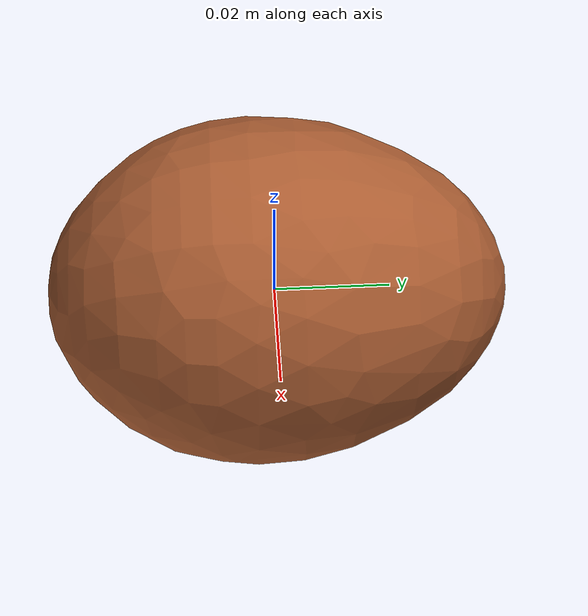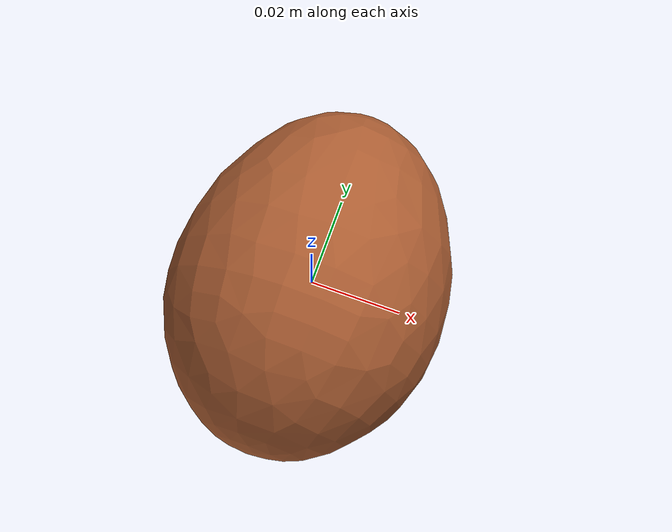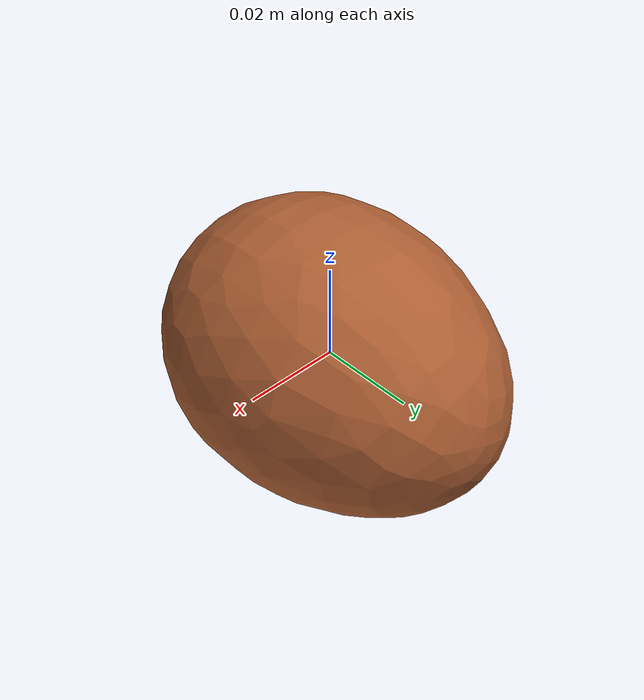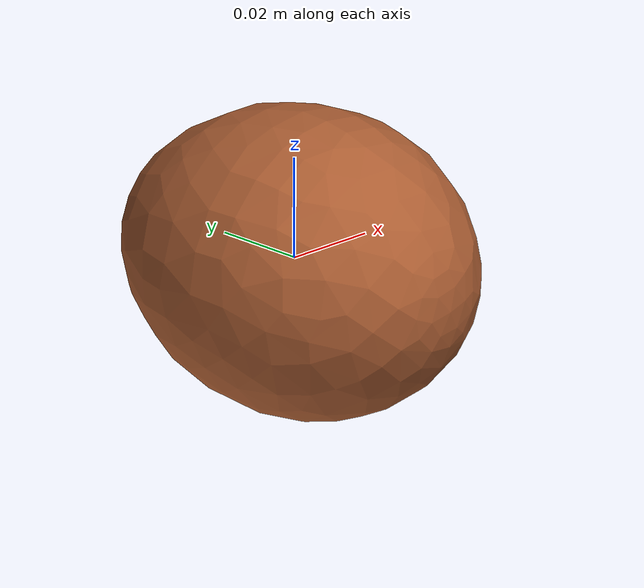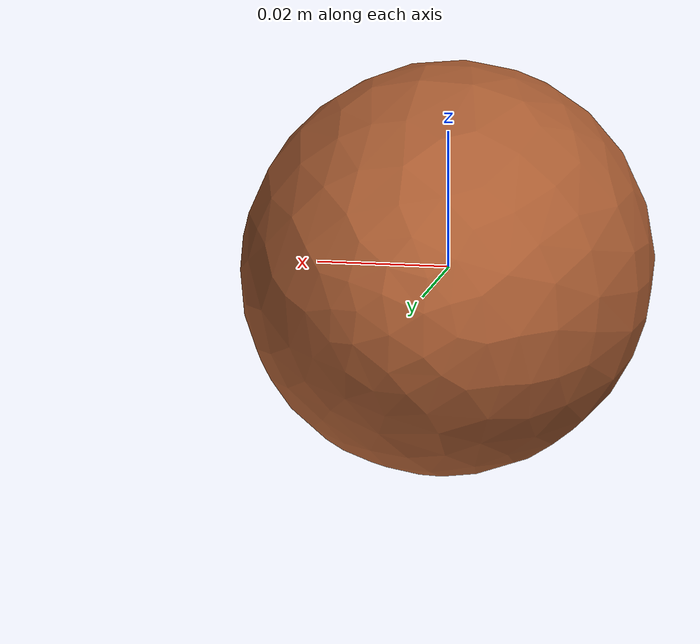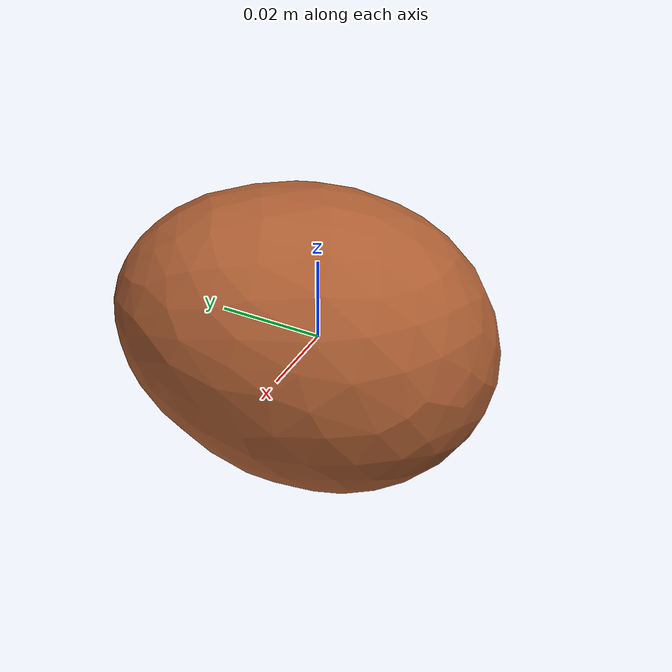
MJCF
<mujoco model="Egg_15">
  <compiler autolimits="true" boundmass="0.01" angle="radian"/>
  <default>
    <default class="/">
      <default class="__VISUAL_MJT__">
        <geom contype="0" conaffinity="0" group="0"/>
      </default>
      <default class="__STRUCTURAL_MJT__">
        <geom contype="8" conaffinity="15" group="4" friction="0.90000000000000002 0.90000000000000002 0.001" solref="0.025000000000000001 1" solimp="0.998 0.998 0.001"/>
      </default>
      <default class="__DYNAMIC_MJT__">
        <geom contype="1" conaffinity="15" group="4" friction="0.90000000000000002 0.90000000000000002 0.001" solref="0.025000000000000001 1" solimp="0.998 0.998 0.001"/>
      </default>
    </default>
  </default>
  <asset>
    <material name="material_Egg3_Mat" class="/" specular="0.5" shininess="0.5" rgba="0.66911770000000004 0.3643962 0.19679930000000001 1"/>
    <mesh name="Egg_15_egg_15" class="/" file="Egg_15_egg_15/Egg_15_egg_15.obj" scale="1 1 1"/>
  </asset>
  <worldbody>
    <body name="Egg_15">
      <joint name="Egg_15_free" class="/" type="free" pos="0 0 0" axis="0 0 1" stiffness="0" range="0 0" armature="0" damping="0.10000000000000001" frictionloss="0"/>
      <body name="Egg_15_egg_15" pos="-0 0 0" quat="1 0 0 0">
        <geom name="Egg_15_egg_15" class="__VISUAL_MJT__" type="mesh" material="material_Egg3_Mat" shellinertia="true" mesh="Egg_15_egg_15"/>
        <geom name="Egg_15_PrimitiveCollider_0" class="__DYNAMIC_MJT__" type="capsule" size="0.02771531417965889 0.011048357933759689" rgba="0 1 0 1" pos="-0 0 0" quat="0.70710678118654757 0.70710678118654746 0 0"/>
      </body>
    </body>
  </worldbody>
</mujoco>
